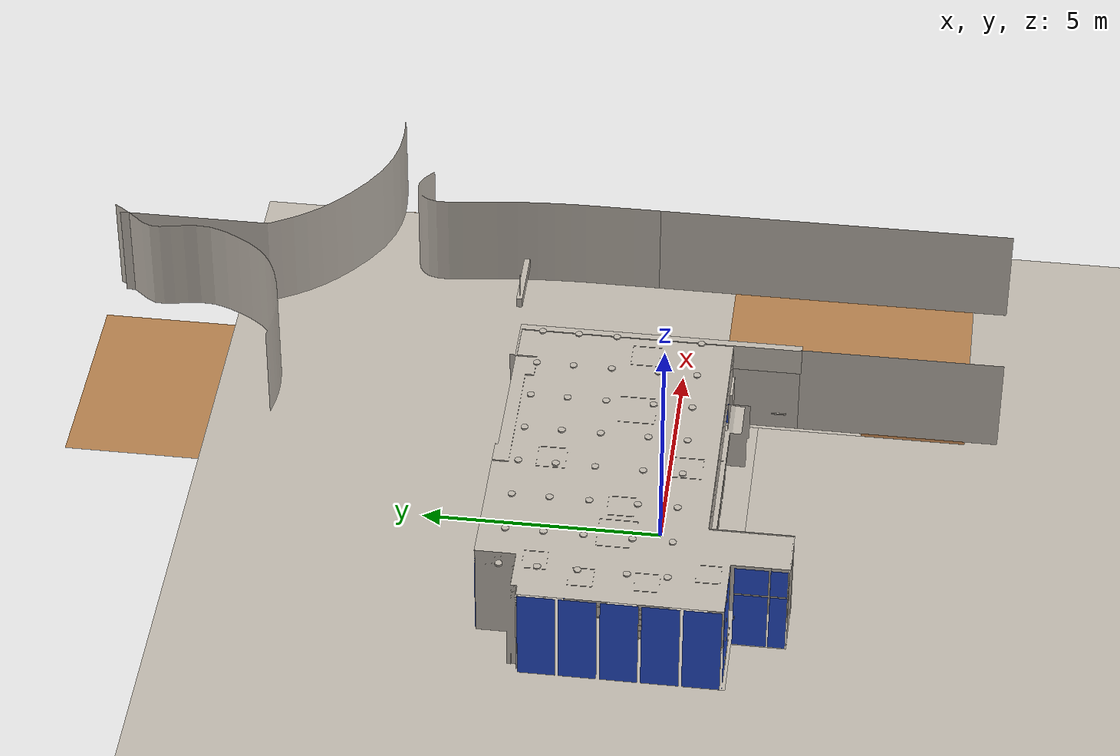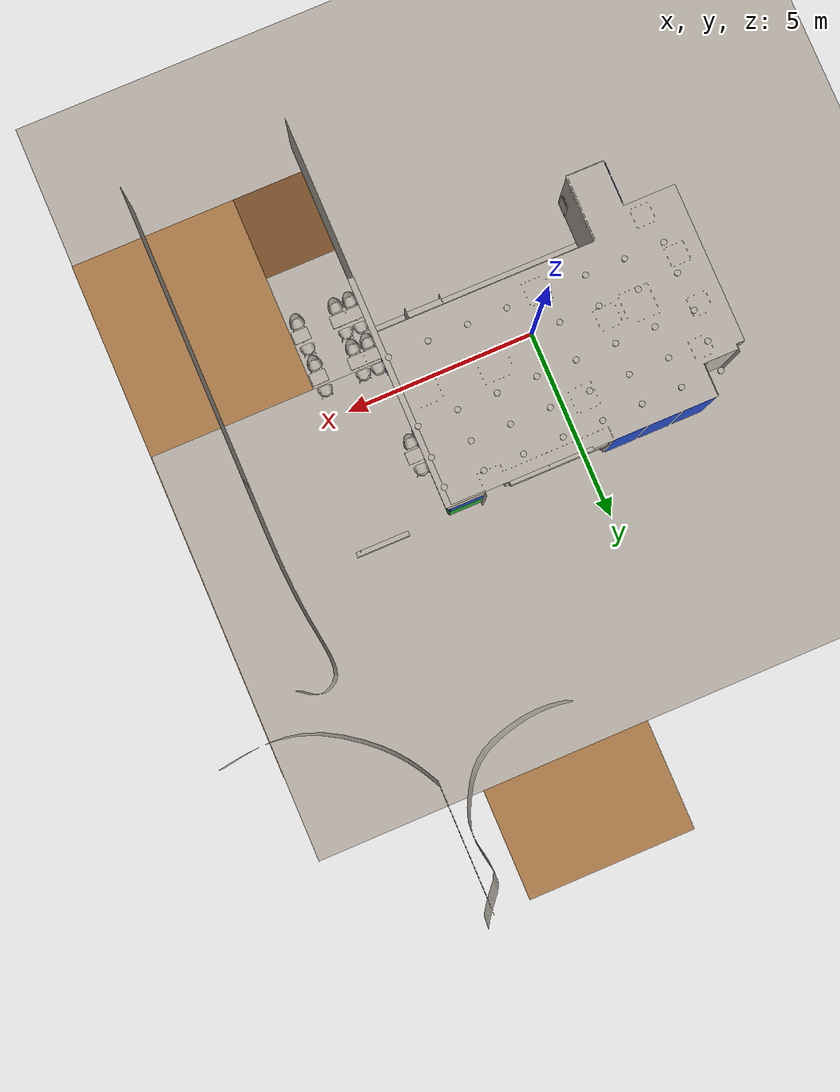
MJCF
<mujoco model="store">

  <compiler angle="radian" autolimits="true"/>

  <default>
    <default class="visual">
      <geom group="2" type="mesh" contype="0" conaffinity="0"/>
    </default>
    <default class="collision">
      <geom group="3" type="mesh"/>
    </default>
  </default>

    <asset>
        <texture type="skybox" builtin="gradient" rgb1=".9 .9 .9" rgb2=".9 .9 .9" width="100" height="100"/>
        <texture file="textures/tile_grigia_caldera_porcelain_floor.png" type="2d" name="texplane"/>

        <material name="floorplane" reflectance="0.0" shininess="0.0"
	        specular="0.0" texrepeat="3 3" texture="texplane" texuniform="true"/>
        <texture file="textures/smooth_light_gray_plaster.png" type="2d" name="tex-wall"/>
        <material name="walls_mat" reflectance="0.0" shininess="0.1" specular="0.8" texrepeat="3 3" texture="tex-wall" texuniform="true" />
        <material name="white" rgba="1 1 1 1"/>
        <material name="gray" rgba="0.753 0.753 0.753 1"/>
        <material name="black" rgba="0.149 0.149 0.149 1"/>
    </asset>
  <asset>
    <texture type="2d" name="2-stack-wp1DiffuseMap" file="store/2-stack-wp1DiffuseMap.png"/>
    <material name="2_stack_wp1" texture="2-stack-wp1DiffuseMap" specular="0.0" shininess="0.010000005"/>
    <texture type="2d" name="2-stack-wp3DiffuseMap" file="store/2-stack-wp3DiffuseMap.png"/>
    <material name="2_stack_wp3" texture="2-stack-wp3DiffuseMap" specular="0.0" shininess="0.010000005"/>
    <texture type="2d" name="2-wp-1DiffuseMap" file="store/2-wp-1DiffuseMap.png"/>
    <material name="2_wp_1" texture="2-wp-1DiffuseMap" specular="0.0" shininess="0.010000005"/>
    <texture type="2d" name="2-wp-2DiffuseMap" file="store/2-wp-2DiffuseMap.png"/>
    <material name="2_wp_2" texture="2-wp-2DiffuseMap" specular="0.0" shininess="0.010000005"/>
    <texture type="2d" name="711-D-GEDiffuseMap" file="store/711-D-GEDiffuseMap.png"/>
    <material name="711_D_GE" texture="711-D-GEDiffuseMap" specular="0.0" shininess="0.010000005"/>
    <texture type="2d" name="711-Stacks-1DiffuseMap" file="store/711-Stacks-1DiffuseMap.png"/>
    <material name="711_Stacks_1" texture="711-Stacks-1DiffuseMap" specular="0.0" shininess="0.010000005"/>
    <texture type="2d" name="711-Stacks-2DiffuseMap" file="store/711-Stacks-2DiffuseMap.png"/>
    <material name="711_Stacks_2" texture="711-Stacks-2DiffuseMap" specular="0.0" shininess="0.010000005"/>
    <texture type="2d" name="711-Stacks-3DiffuseMap" file="store/711-Stacks-3DiffuseMap.png"/>
    <material name="711_Stacks_3" texture="711-Stacks-3DiffuseMap" specular="0.0" shininess="0.010000005"/>
    <texture type="2d" name="711-Stacks-Bake-1DiffuseMap" file="store/711-Stacks-Bake-1DiffuseMap.png"/>
    <material name="711_Stacks_Bake_1" texture="711-Stacks-Bake-1DiffuseMap" specular="0.0" shininess="0.010000005"/>
    <texture type="2d" name="711-Stacks-ICEDiffuseMap" file="store/711-Stacks-ICEDiffuseMap.png"/>
    <material name="711_Stacks_ICE" texture="711-Stacks-ICEDiffuseMap" specular="0.0" shininess="0.010000005"/>
    <texture type="2d" name="711-Stacks-fastfoodDiffuseMap" file="store/711-Stacks-fastfoodDiffuseMap.png"/>
    <material name="711_Stacks_fastfood" texture="711-Stacks-fastfoodDiffuseMap" specular="0.0" shininess="0.010000005"/>
    <texture type="2d" name="Glass-Blue" file="store/Glass-Blue.png"/>
    <material name="711_wps_007456" texture="Glass-Blue" specular="0.0" shininess="0.010000005"/>
    <texture type="2d" name="Glass-Blue-2" file="store/Glass-Blue-2.png"/>
    <material name="711_wps_007456ccv" texture="Glass-Blue-2" specular="0.0" shininess="0.010000005"/>
    <texture type="2d" name="Stacks-unbrella-04" file="store/Stacks-unbrella-04.png"/>
    <material name="722_Stacks_Unbake_302_VB" texture="Stacks-unbrella-04" specular="0.0" shininess="0.010000005"/>
    <texture type="2d" name="722-Stacks-cashier-03DiffuseMap" file="store/722-Stacks-cashier-03DiffuseMap.png"/>
    <material name="722_Stacks_cashier_03" texture="722-Stacks-cashier-03DiffuseMap" specular="0.0" shininess="0.010000005"/>
    <texture type="2d" name="Bz-x1" file="store/Bz-x1.png"/>
    <material name="BZ_x01" texture="Bz-x1" specular="0.0" shininess="0.010000005"/>
    <texture type="2d" name="B-Stack02DiffuseMap" file="store/B-Stack02DiffuseMap.png"/>
    <material name="B_Stack022" texture="B-Stack02DiffuseMap" specular="0.0" shininess="0.010000005"/>
    <material name="COcola" specular="0.0" shininess="0.010000005" rgba="0.086300 0.086300 0.086300 1.000000"/>
    <texture type="2d" name="Glass-White" file="store/Glass-White.png"/>
    <material name="COcolasc" texture="Glass-White" specular="0.0" shininess="0.010000005"/>
    <material name="Cashier_glass" texture="Glass-Blue" specular="0.0" shininess="0.010000005"/>
    <material name="Cashier_glasssss" texture="Glass-Blue-2" specular="0.0" shininess="0.010000005"/>
    <texture type="2d" name="Ceiling-01DiffuseMap" file="store/Ceiling-01DiffuseMap.png"/>
    <material name="Ceiling_01" texture="Ceiling-01DiffuseMap" specular="0.0" shininess="0.010000005"/>
    <texture type="2d" name="Cocola3" file="store/Cocola3.png"/>
    <material name="Cocola_alpha" texture="Cocola3" specular="0.0" shininess="0.010000005"/>
    <texture type="2d" name="Stacks-unbrella-05" file="store/Stacks-unbrella-05.png"/>
    <material name="Cocola_alphassrt" texture="Stacks-unbrella-05" specular="0.0" shininess="0.010000005"/>
    <texture type="2d" name="Stacks-unbrella-07" file="store/Stacks-unbrella-07.png"/>
    <material name="Cocola_alphassty" texture="Stacks-unbrella-07" specular="0.0" shininess="0.010000005"/>
    <texture type="2d" name="Stacks-Water-02-004" file="store/Stacks-Water-02-004.png"/>
    <material name="Cocola_alphaww" texture="Stacks-Water-02-004" specular="0.0" shininess="0.010000005"/>
    <texture type="2d" name="Cocola3-3" file="store/Cocola3-3.png"/>
    <material name="Cocola_alphawwre" texture="Cocola3-3" specular="0.0" shininess="0.010000005"/>
    <texture type="2d" name="Stacks-Water-02-0055" file="store/Stacks-Water-02-0055.png"/>
    <material name="Cocola_alphawwress" texture="Stacks-Water-02-0055" specular="0.0" shininess="0.010000005"/>
    <texture type="2d" name="711-wps-009" file="store/711-wps-009.png"/>
    <material name="D_wp_002oo" texture="711-wps-009" specular="0.0" shininess="0.010000005"/>
    <texture type="2d" name="FSU5-01DiffuseMap" file="store/FSU5-01DiffuseMap.png"/>
    <material name="FSU5_01" texture="FSU5-01DiffuseMap" specular="0.0" shininess="0.010000005"/>
    <material name="FZ_t_04sglass" texture="Glass-Blue" specular="0.0" shininess="0.010000005"/>
    <texture type="2d" name="Stacks-FZ-11" file="store/Stacks-FZ-11.png"/>
    <material name="FZ_t_07" texture="Stacks-FZ-11" specular="0.0" shininess="0.010000005"/>
    <texture type="2d" name="Stacks-FZ-12" file="store/Stacks-FZ-12.png"/>
    <material name="FZ_t_07ss" texture="Stacks-FZ-12" specular="0.0" shininess="0.010000005"/>
    <texture type="2d" name="Floor-1DiffuseMap" file="store/Floor-1DiffuseMap.png"/>
    <material name="Floor_1" texture="Floor-1DiffuseMap" specular="0.0" shininess="0.010000005"/>
    <texture type="2d" name="Floor-2DiffuseMap" file="store/Floor-2DiffuseMap.png"/>
    <material name="Floor_2" texture="Floor-2DiffuseMap" specular="0.0" shininess="0.010000005"/>
    <texture type="2d" name="white" file="store/white.png"/>
    <material name="Material__180" texture="white" specular="0.0" shininess="0.010000005"/>
    <texture type="2d" name="darkgrey" file="store/darkgrey.png"/>
    <material name="Material__181" texture="darkgrey" specular="0.0" shininess="0.010000005"/>
    <texture type="2d" name="711-wps-013" file="store/711-wps-013.png"/>
    <material name="Material__19522eert" texture="711-wps-013" specular="0.0" shininess="0.010000005"/>
    <texture type="2d" name="711-wps-015" file="store/711-wps-015.png"/>
    <material name="Material__19522eert3" texture="711-wps-015" specular="0.0" shininess="0.010000005"/>
    <texture type="2d" name="711-wps-014" file="store/711-wps-014.png"/>
    <material name="Material__19522eert3f" texture="711-wps-014" specular="0.0" shininess="0.010000005"/>
    <texture type="2d" name="wooden-floor01" file="store/wooden-floor01.png"/>
    <material name="Material__19523" texture="wooden-floor01" specular="0.0" shininess="0.010000005"/>
    <texture type="2d" name="shop-01" file="store/shop-01.png"/>
    <material name="Material__19526" texture="shop-01" specular="0.0" shininess="0.010000005"/>
    <texture type="2d" name="shop-02" file="store/shop-02.png"/>
    <material name="Material__19527" texture="shop-02" specular="0.0" shininess="0.010000005"/>
    <texture type="2d" name="shop-03" file="store/shop-03.png"/>
    <material name="Material__19539" texture="shop-03" specular="0.0" shininess="0.010000005"/>
    <texture type="2d" name="enviornment001" file="store/enviornment001.png"/>
    <material name="Material__19541" texture="enviornment001" specular="0.0" shininess="0.010000005"/>
    <texture type="2d" name="enviornment002" file="store/enviornment002.png"/>
    <material name="Material__19542" texture="enviornment002" specular="0.0" shininess="0.010000005"/>
    <texture type="2d" name="enviornment003" file="store/enviornment003.png"/>
    <material name="Material__19543" texture="enviornment003" specular="0.0" shininess="0.010000005"/>
    <texture type="2d" name="Window03-T-01" file="store/Window03-T-01.png"/>
    <material name="Material__19546" texture="Window03-T-01" specular="0.0" shininess="0.010000005"/>
    <texture type="2d" name="door-signage01" file="store/door-signage01.png"/>
    <material name="Material__19547" texture="door-signage01" specular="0.0" shininess="0.010000005"/>
    <texture type="2d" name="light01" file="store/light01.png"/>
    <material name="Material__19551" texture="light01" specular="0.0" shininess="0.010000005"/>
    <material name="Material__24463" texture="door-signage01" specular="0.0" shininess="0.010000005"/>
    <texture type="2d" name="sign-002" file="store/sign-002.png"/>
    <material name="Material__24464" texture="sign-002" specular="0.0" shininess="0.010000005"/>
    <texture type="2d" name="Window-sign01" file="store/Window-sign01.png"/>
    <material name="Material__24465" texture="Window-sign01" specular="0.0" shininess="0.010000005"/>
    <texture type="2d" name="Pull01" file="store/Pull01.png"/>
    <material name="Material__24466" texture="Pull01" specular="0.0" shininess="0.010000005"/>
    <texture type="2d" name="Glass-darkgreen" file="store/Glass-darkgreen.png"/>
    <material name="Material__24470" texture="Glass-darkgreen" specular="0.0" shininess="0.010000005"/>
    <texture type="2d" name="sign-01-r" file="store/sign-01-r.png"/>
    <material name="Material__24528" texture="sign-01-r" specular="0.0" shininess="0.010000005"/>
    <texture type="2d" name="sign-01" file="store/sign-01.png"/>
    <material name="Material__24529" texture="sign-01" specular="0.0" shininess="0.010000005"/>
    <texture type="2d" name="sign-01-b" file="store/sign-01-b.png"/>
    <material name="Material__24530" texture="sign-01-b" specular="0.0" shininess="0.010000005"/>
    <material name="Material__24543" texture="sign-01" specular="0.0" shininess="0.010000005"/>
    <texture type="2d" name="B-product01DiffuseMap" file="store/B-product01DiffuseMap.png"/>
    <material name="Material__25495" texture="B-product01DiffuseMap" specular="0.0" shininess="0.010000005"/>
    <texture type="2d" name="711-Stacks-cashierDiffuseMap" file="store/711-Stacks-cashierDiffuseMap.png"/>
    <material name="Material__25885" texture="711-Stacks-cashierDiffuseMap" specular="0.0" shininess="0.010000005"/>
    <texture type="2d" name="2-stack-wp2DiffuseMap" file="store/2-stack-wp2DiffuseMap.png"/>
    <material name="Material__26731" texture="2-stack-wp2DiffuseMap" specular="0.0" shininess="0.010000005"/>
    <texture type="2d" name="711-Stacks-cashier2DiffuseMap" file="store/711-Stacks-cashier2DiffuseMap.png"/>
    <material name="Material__26825" texture="711-Stacks-cashier2DiffuseMap" specular="0.0" shininess="0.010000005"/>
    <material name="Material__272" texture="white" specular="0.0" shininess="0.010000005"/>
    <material name="Material__354" texture="white" specular="0.0" shininess="0.010000005"/>
    <texture type="2d" name="B-bakery-01-glass-01" file="store/B-bakery-01-glass-01.png"/>
    <material name="Material__355" texture="B-bakery-01-glass-01" specular="0.0" shininess="0.010000005"/>
    <texture type="2d" name="Arch-board01" file="store/Arch-board01.png"/>
    <material name="Material__3563" texture="Arch-board01" specular="0.0" shininess="0.010000005"/>
    <material name="Material__368" texture="white" specular="0.0" shininess="0.010000005"/>
    <texture type="2d" name="B-bakery-darkglass" file="store/B-bakery-darkglass.png"/>
    <material name="Material__370" texture="B-bakery-darkglass" specular="0.0" shininess="0.010000005"/>
    <texture type="2d" name="refrigerator-darkgreen" file="store/refrigerator-darkgreen.png"/>
    <material name="Material__404" texture="refrigerator-darkgreen" specular="0.0" shininess="0.010000005"/>
    <texture type="2d" name="floor-brown" file="store/floor-brown.png"/>
    <material name="Material__691" texture="floor-brown" specular="0.0" shininess="0.010000005"/>
    <texture type="2d" name="Exit01" file="store/Exit01.png"/>
    <material name="Plane051_VB" texture="Exit01" specular="0.0" shininess="0.010000005"/>
    <texture type="2d" name="Stacks-Cashier-A3-001" file="store/Stacks-Cashier-A3-001.png"/>
    <material name="Stacks_A3_001" texture="Stacks-Cashier-A3-001" specular="0.0" shininess="0.010000005"/>
    <material name="Stacks_A5_003vv" specular="0.0" shininess="0.010000005" rgba="0.282400 0.282400 0.282400 1.000000"/>
    <texture type="2d" name="Stacks-Cashier-02-016" file="store/Stacks-Cashier-02-016.png"/>
    <material name="Stacks_Chahier_03_006" texture="Stacks-Cashier-02-016" specular="0.0" shininess="0.010000005"/>
    <material name="Stacks_Chshier_06_001" specular="0.0" shininess="0.010000005" rgba="0.960800 0.960800 0.960800 1.000000"/>
    <texture type="2d" name="Stacks-Cashier-06-001" file="store/Stacks-Cashier-06-001.png"/>
    <material name="Stacks_Chshier_06_001q" texture="Stacks-Cashier-06-001" specular="0.0" shininess="0.010000005"/>
    <texture type="2d" name="Stacks-Cashier-06-002" file="store/Stacks-Cashier-06-002.png"/>
    <material name="Stacks_Chshier_06_001qx" texture="Stacks-Cashier-06-002" specular="0.0" shininess="0.010000005"/>
    <texture type="2d" name="Stacks-T-BZ-02" file="store/Stacks-T-BZ-02.png"/>
    <material name="Stacks_bz_x1" texture="Stacks-T-BZ-02" specular="0.0" shininess="0.010000005"/>
    <texture type="2d" name="Wall-03DiffuseMap" file="store/Wall-03DiffuseMap.png"/>
    <material name="Wall_03" texture="Wall-03DiffuseMap" specular="0.0" shininess="0.010000005"/>
    <texture type="2d" name="aircondition-01DiffuseMap" file="store/aircondition-01DiffuseMap.png"/>
    <material name="aircondition_01" texture="aircondition-01DiffuseMap" specular="0.0" shininess="0.010000005"/>
    <texture type="2d" name="board-1DiffuseMap" file="store/board-1DiffuseMap.png"/>
    <material name="board_1" texture="board-1DiffuseMap" specular="0.0" shininess="0.010000005"/>
    <texture type="2d" name="711-Stacks-Bake-01DiffuseMap" file="store/711-Stacks-Bake-01DiffuseMap.png"/>
    <material name="chair" texture="711-Stacks-Bake-01DiffuseMap" specular="0.0" shininess="0.010000005"/>
    <texture type="2d" name="dangaoDiffuseMap" file="store/dangaoDiffuseMap.png"/>
    <material name="dangao" texture="dangaoDiffuseMap" specular="0.0" shininess="0.010000005"/>
    <mesh file="store/store_0.obj" scale="0.01 0.01 0.01"/>
    <mesh file="store/store_1.obj" scale="0.01 0.01 0.01"/>
    <mesh file="store/store_2.obj" scale="0.01 0.01 0.01"/>
    <mesh file="store/store_3.obj" scale="0.01 0.01 0.01"/>
    <mesh file="store/store_4.obj" scale="0.01 0.01 0.01"/>
    <mesh file="store/store_5.obj" scale="0.01 0.01 0.01"/>
    <mesh file="store/store_6.obj" scale="0.01 0.01 0.01"/>
    <mesh file="store/store_7.obj" scale="0.01 0.01 0.01"/>
    <mesh file="store/store_8.obj" scale="0.01 0.01 0.01"/>
    <mesh file="store/store_12.obj" scale="0.01 0.01 0.01"/>
    <mesh file="store/store_13.obj" scale="0.01 0.01 0.01"/>
    <mesh file="store/store_15.obj" scale="0.01 0.01 0.01"/>
    <mesh file="store/store_16.obj" scale="0.01 0.01 0.01"/>
    <mesh file="store/store_17.obj" scale="0.01 0.01 0.01"/>
    <mesh file="store/store_18.obj" scale="0.01 0.01 0.01"/>
    <mesh file="store/store_19.obj" scale="0.01 0.01 0.01"/>
    <mesh file="store/store_20.obj" scale="0.01 0.01 0.01"/>
    <mesh file="store/store_22.obj" scale="0.01 0.01 0.01"/>
    <mesh file="store/store_23.obj" scale="0.01 0.01 0.01"/>
    <mesh file="store/store_24.obj" scale="0.01 0.01 0.01"/>
    <mesh file="store/store_25.obj" scale="0.01 0.01 0.01"/>
    <mesh file="store/store_26.obj" scale="0.01 0.01 0.01"/>
    <mesh file="store/store_27.obj" scale="0.01 0.01 0.01"/>
    <mesh file="store/store_28.obj" scale="0.01 0.01 0.01"/>
    <mesh file="store/store_29.obj" scale="0.01 0.01 0.01"/>
    <mesh file="store/store_30.obj" scale="0.01 0.01 0.01"/>
    <mesh file="store/store_31.obj" scale="0.01 0.01 0.01"/>
    <mesh file="store/store_32.obj" scale="0.01 0.01 0.01"/>
    <mesh file="store/store_33.obj" scale="0.01 0.01 0.01"/>
    <mesh file="store/store_35.obj" scale="0.01 0.01 0.01"/>
    <mesh file="store/store_36.obj" scale="0.01 0.01 0.01"/>
    <mesh file="store/store_37.obj" scale="0.01 0.01 0.01"/>
    <mesh file="store/store_38.obj" scale="0.01 0.01 0.01"/>
    <mesh file="store/store_39.obj" scale="0.01 0.01 0.01"/>
    <mesh file="store/store_40.obj" scale="0.01 0.01 0.01"/>
    <mesh file="store/store_41.obj" scale="0.01 0.01 0.01"/>
    <mesh file="store/store_42.obj" scale="0.01 0.01 0.01"/>
    <mesh file="store/store_43.obj" scale="0.01 0.01 0.01"/>
    <mesh file="store/store_44.obj" scale="0.01 0.01 0.01"/>
    <mesh file="store/store_45.obj" scale="0.01 0.01 0.01"/>
    <mesh file="store/store_46.obj" scale="0.01 0.01 0.01"/>
    <mesh file="store/store_47.obj" scale="0.01 0.01 0.01"/>
    <mesh file="store/store_48.obj" scale="0.01 0.01 0.01"/>
    <mesh file="store/store_49.obj" scale="0.01 0.01 0.01"/>
    <mesh file="store/store_50.obj" scale="0.01 0.01 0.01"/>
    <mesh file="store/store_51.obj" scale="0.01 0.01 0.01"/>
    <mesh file="store/store_52.obj" scale="0.01 0.01 0.01"/>
    <mesh file="store/store_53.obj" scale="0.01 0.01 0.01"/>
    <mesh file="store/store_54.obj" scale="0.01 0.01 0.01"/>
    <mesh file="store/store_55.obj" scale="0.01 0.01 0.01"/>
    <mesh file="store/store_56.obj" scale="0.01 0.01 0.01"/>
    <mesh file="store/store_57.obj" scale="0.01 0.01 0.01"/>
    <mesh file="store/store_58.obj" scale="0.01 0.01 0.01"/>
    <mesh file="store/store_59.obj" scale="0.01 0.01 0.01"/>
    <mesh file="store/store_60.obj" scale="0.01 0.01 0.01"/>
    <mesh file="store/store_61.obj" scale="0.01 0.01 0.01"/>
    <mesh file="store/store_62.obj" scale="0.01 0.01 0.01"/>
    <mesh file="store/store_63.obj" scale="0.01 0.01 0.01"/>
    <mesh file="store/store_64.obj" scale="0.01 0.01 0.01"/>
    <mesh file="store/store_66.obj" scale="0.01 0.01 0.01"/>
    <mesh file="store/store_67.obj" scale="0.01 0.01 0.01"/>
    <mesh file="store/store_68.obj" scale="0.01 0.01 0.01"/>
    <mesh file="store/store_69.obj" scale="0.01 0.01 0.01"/>
    <mesh file="store/store_70.obj" scale="0.01 0.01 0.01"/>
    <mesh file="store/store_71.obj" scale="0.01 0.01 0.01"/>
    <mesh file="store/store_72.obj" scale="0.01 0.01 0.01"/>
    <mesh file="store/store_73.obj" scale="0.01 0.01 0.01"/>
    <mesh file="store/store_74.obj" scale="0.01 0.01 0.01"/>
    <mesh file="store/store_75.obj" scale="0.01 0.01 0.01"/>
    <mesh file="store/store_76.obj" scale="0.01 0.01 0.01"/>
    <mesh file="store/store_77.obj" scale="0.01 0.01 0.01"/>
    <mesh file="store/store_78.obj" scale="0.01 0.01 0.01"/>
    <mesh file="store/store_79.obj" scale="0.01 0.01 0.01"/>
    <mesh file="store/store_80.obj" scale="0.01 0.01 0.01"/>
    <mesh file="store/store_83.obj" scale="0.01 0.01 0.01"/>
    <mesh file="store/store_84.obj" scale="0.01 0.01 0.01"/>
    <mesh file="store/store_85.obj" scale="0.01 0.01 0.01"/>
    <mesh file="store/store_86.obj" scale="0.01 0.01 0.01"/>
    <mesh file="store/store_87.obj" scale="0.01 0.01 0.01"/>
    <mesh file="store/store_88.obj" scale="0.01 0.01 0.01"/>
    <mesh file="store/store_89.obj" scale="0.01 0.01 0.01"/>
    <mesh file="store/store_90.obj" scale="0.01 0.01 0.01"/>
    <mesh file="store/store_91.obj" scale="0.01 0.01 0.01"/>
    <mesh file="store/store_92.obj" scale="0.01 0.01 0.01"/>
    <mesh file="store/store_93.obj" scale="0.01 0.01 0.01"/>
    <mesh file="store/store_94.obj" scale="0.01 0.01 0.01"/>
    <mesh file="store/store_95.obj" scale="0.01 0.01 0.01"/>
    <mesh file="store/store_96.obj" scale="0.01 0.01 0.01"/>
    <mesh file="store/store_97.obj" scale="0.01 0.01 0.01"/>
    <mesh file="store/store_98.obj" scale="0.01 0.01 0.01"/>
    <mesh file="store/store_99.obj" scale="0.01 0.01 0.01"/>
    <mesh file="store/store_100.obj" scale="0.01 0.01 0.01"/>
    <mesh file="store/store_101.obj" scale="0.01 0.01 0.01"/>
  </asset>
  <worldbody>
    <geom condim="3" group="1" material="floorplane" name="floor" pos="0 0 0" size="10 10 .125" type="plane"/>
    <light pos="0 0 7" dir="0 0 -1" directional="true" ambient="0.2 0.2 0.2" diffuse="0.5 0.5 0.5" specular="0. 0. 0." castshadow="true"/>
    <body name="store" euler="1.57 0 0" pos="0 0 0.3">
      <geom type="mesh" mesh="store_1" material="Material__3563" class="visual"/>
      <geom type="mesh" mesh="store_2" material="Wall_03" class="visual"/>
      <geom type="mesh" mesh="store_3" material="Material__370" class="visual"/>
      <geom type="mesh" mesh="store_4" material="Material__404" class="visual"/>
      <geom type="mesh" mesh="store_5" material="Material__368" class="visual"/>
      <geom type="mesh" mesh="store_6" material="Material__355" class="visual"/>
      <geom type="mesh" mesh="store_7" material="Material__354" class="visual"/>
      <geom type="mesh" mesh="store_8" material="Material__24466" class="visual"/>
      <geom type="mesh" mesh="store_12" material="Material__19547" class="visual"/>
      <geom type="mesh" mesh="store_13" material="Material__19546" class="visual"/>
      <geom type="mesh" mesh="store_15" material="Material__19543" class="visual"/>
      <geom type="mesh" mesh="store_16" material="Material__19542" class="visual"/>
      <geom type="mesh" mesh="store_17" material="Material__19527" class="visual"/>
      <geom type="mesh" mesh="store_18" material="Material__19526" class="visual"/>
      <geom type="mesh" mesh="store_19" material="Material__181" class="visual"/>
      <geom type="mesh" mesh="store_20" material="Material__180" class="visual"/>
      <geom type="mesh" mesh="store_22" material="FSU5_01" class="visual"/>
      <geom type="mesh" mesh="store_23" material="Floor_2" class="visual"/>
      <geom type="mesh" mesh="store_24" material="Floor_1" class="visual"/>
      <geom type="mesh" mesh="store_25" material="dangao" class="visual"/>
      <geom type="mesh" mesh="store_26" material="Material__24543" class="visual"/>
      <geom type="mesh" mesh="store_27" material="Material__19551" class="visual"/>
      <geom type="mesh" mesh="store_28" material="chair" class="visual"/>
      <geom type="mesh" mesh="store_29" material="Ceiling_01" class="visual"/>
      <geom type="mesh" mesh="store_30" material="Material__24528" class="visual"/>
      <geom type="mesh" mesh="store_31" material="Material__24529" class="visual"/>
      <geom type="mesh" mesh="store_32" material="Material__24530" class="visual"/>
      <geom type="mesh" mesh="store_33" material="Material__24470" class="visual"/>
      <geom type="mesh" mesh="store_35" material="Material__691" class="visual"/>
      <geom type="mesh" mesh="store_36" material="Material__19539" class="visual"/>
      <geom type="mesh" mesh="store_37" material="Material__19523" class="visual"/>
      <geom type="mesh" mesh="store_38" material="board_1" class="visual"/>
      <geom type="mesh" mesh="store_43" material="B_Stack022" class="visual"/>
      <geom type="mesh" mesh="store_47" material="Material__25495" class="visual"/>
      <geom type="mesh" mesh="store_49" material="aircondition_01" class="visual"/>
      <geom type="mesh" mesh="store_52" material="Material__19522eert3f" class="visual"/>
      <geom type="mesh" mesh="store_53" material="Material__19522eert3" class="visual"/>
      <geom type="mesh" mesh="store_54" material="Material__19522eert" class="visual"/>
      <geom type="mesh" mesh="store_55" material="D_wp_002oo" class="visual"/>
      <geom type="mesh" mesh="store_56" material="711_wps_007456ccv" class="visual"/>
      <geom type="mesh" mesh="store_57" material="711_wps_007456" class="visual"/>
      <geom type="mesh" mesh="store_58" material="Cocola_alphawwress" class="visual"/>
      <geom type="mesh" mesh="store_59" material="BZ_x01" class="visual"/>
      <geom type="mesh" mesh="store_60" material="COcolasc" class="visual"/>
      <geom type="mesh" mesh="store_61" material="Cocola_alpha" class="visual"/>
      <geom type="mesh" mesh="store_63" material="Cocola_alphassty" class="visual"/>
      <geom type="mesh" mesh="store_64" material="Cocola_alphassrt" class="visual"/>
      <geom type="mesh" mesh="store_66" material="Cocola_alphaww" class="visual"/>
      <geom type="mesh" mesh="store_67" material="Stacks_Chshier_06_001q" class="visual"/>
      <geom type="mesh" mesh="store_68" material="Cocola_alphawwre" class="visual"/>
      <geom type="mesh" mesh="store_69" material="Stacks_Chshier_06_001qx" class="visual"/>
      <geom type="mesh" mesh="store_70" material="Cashier_glass" class="visual"/>
      <geom type="mesh" mesh="store_71" material="Cashier_glasssss" class="visual"/>
      <geom type="mesh" mesh="store_72" material="FZ_t_04sglass" class="visual"/>
      <geom type="mesh" mesh="store_73" material="722_Stacks_cashier_03" class="visual"/>
      <geom type="mesh" mesh="store_74" material="711_Stacks_ICE" class="visual"/>
      <geom type="mesh" mesh="store_75" material="711_Stacks_fastfood" class="visual"/>
      <geom type="mesh" mesh="store_76" material="Material__26825" class="visual"/>
      <geom type="mesh" mesh="store_77" material="Material__25885" class="visual"/>
      <geom type="mesh" mesh="store_78" material="Stacks_A5_003vv" class="visual"/>
      <geom type="mesh" mesh="store_79" material="Stacks_A3_001" class="visual"/>
      <geom type="mesh" mesh="store_80" material="Stacks_Chshier_06_001" class="visual"/>
      <geom type="mesh" mesh="store_89" material="711_Stacks_Bake_1" class="visual"/>
      <geom type="mesh" mesh="store_90" material="COcola" class="visual"/>
      <geom type="mesh" mesh="store_92" material="Stacks_bz_x1" class="visual"/>
      <geom type="mesh" mesh="store_93" material="711_Stacks_3" class="visual"/>
      <geom type="mesh" mesh="store_94" material="711_Stacks_2" class="visual"/>
      <geom type="mesh" mesh="store_95" material="711_Stacks_1" class="visual"/>
      <geom type="mesh" mesh="store_96" material="711_D_GE" class="visual"/>
      <geom type="mesh" mesh="store_97" material="2_wp_2" class="visual"/>
      <geom type="mesh" mesh="store_98" material="2_wp_1" class="visual"/>
      <geom type="mesh" mesh="store_99" material="2_stack_wp3" class="visual"/>
      <geom type="mesh" mesh="store_100" material="Material__26731" class="visual"/>
      <geom type="mesh" mesh="store_101" material="2_stack_wp1" class="visual"/>
    </body>
  </worldbody>
</mujoco>
